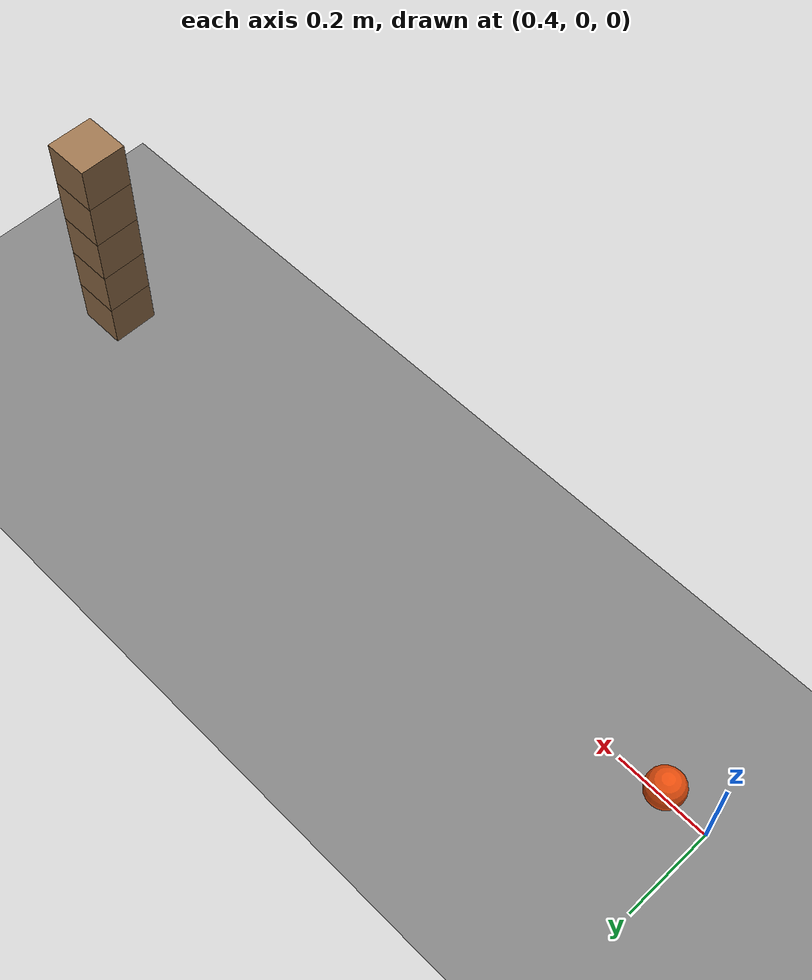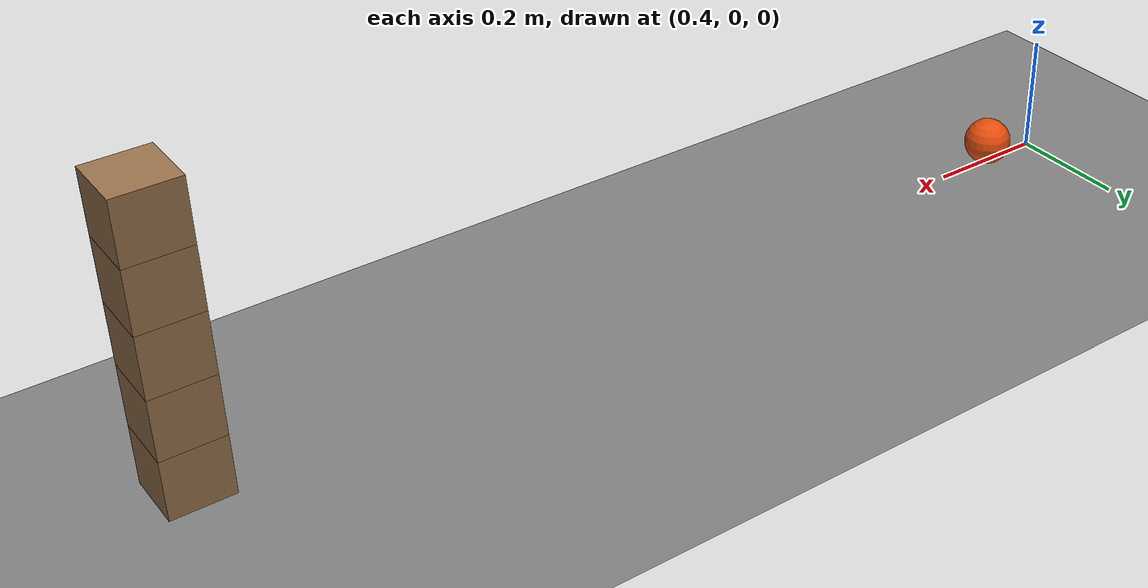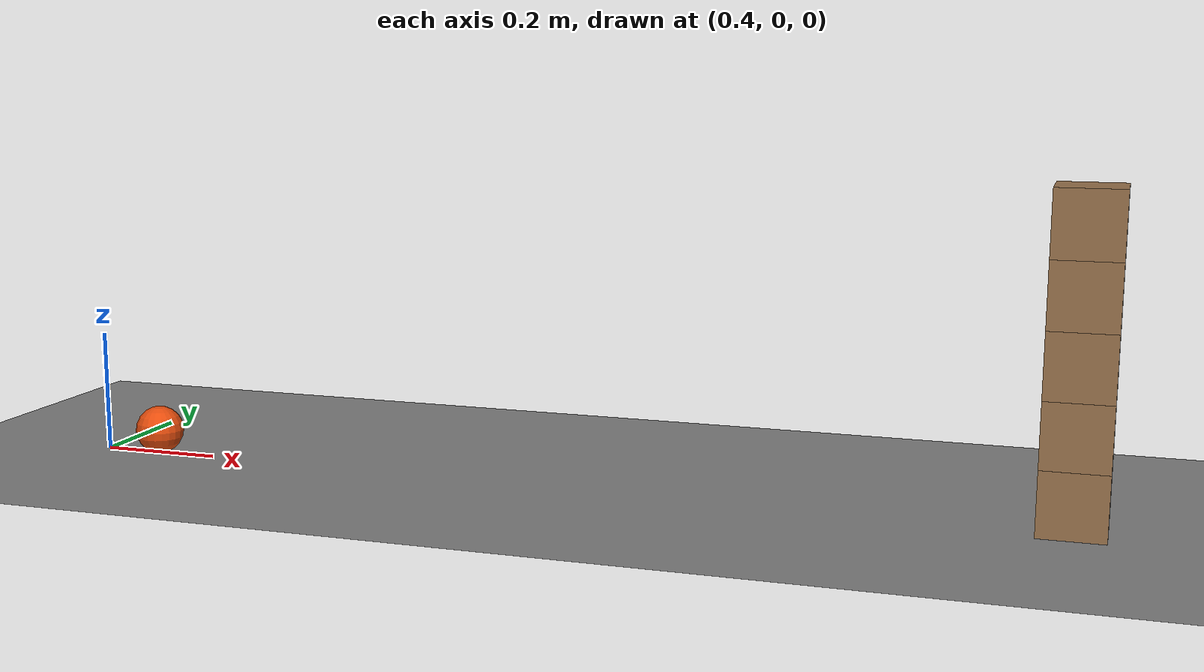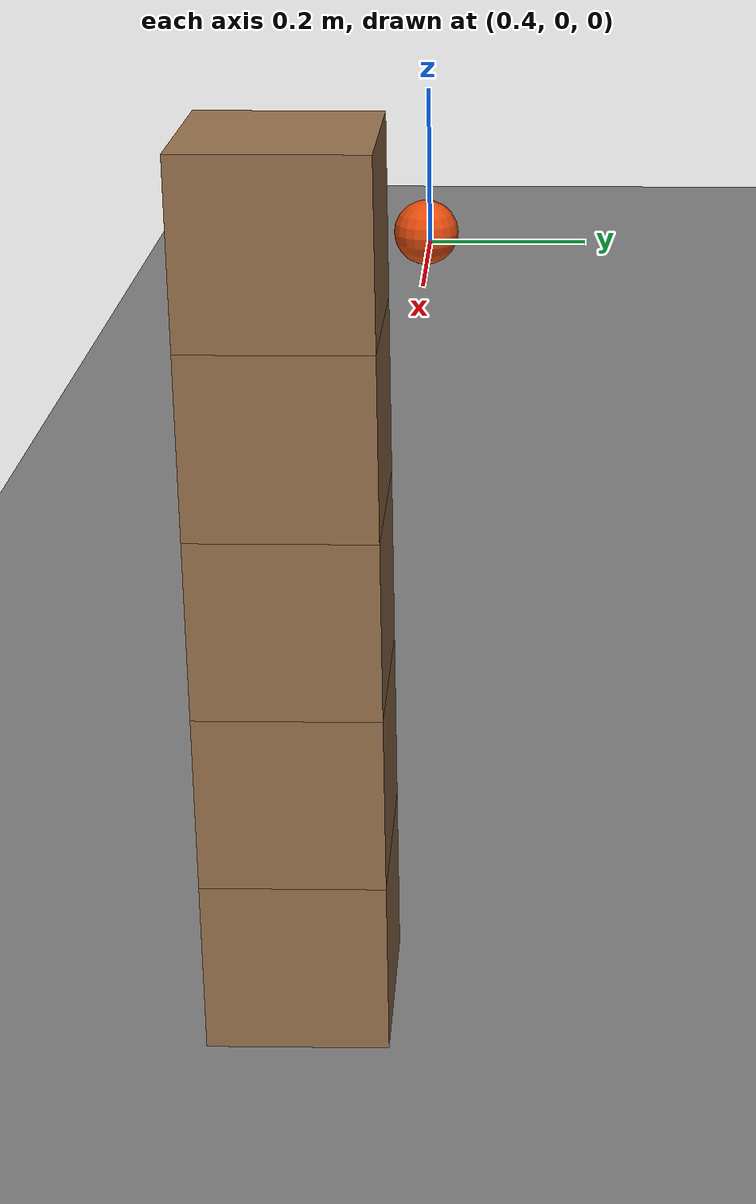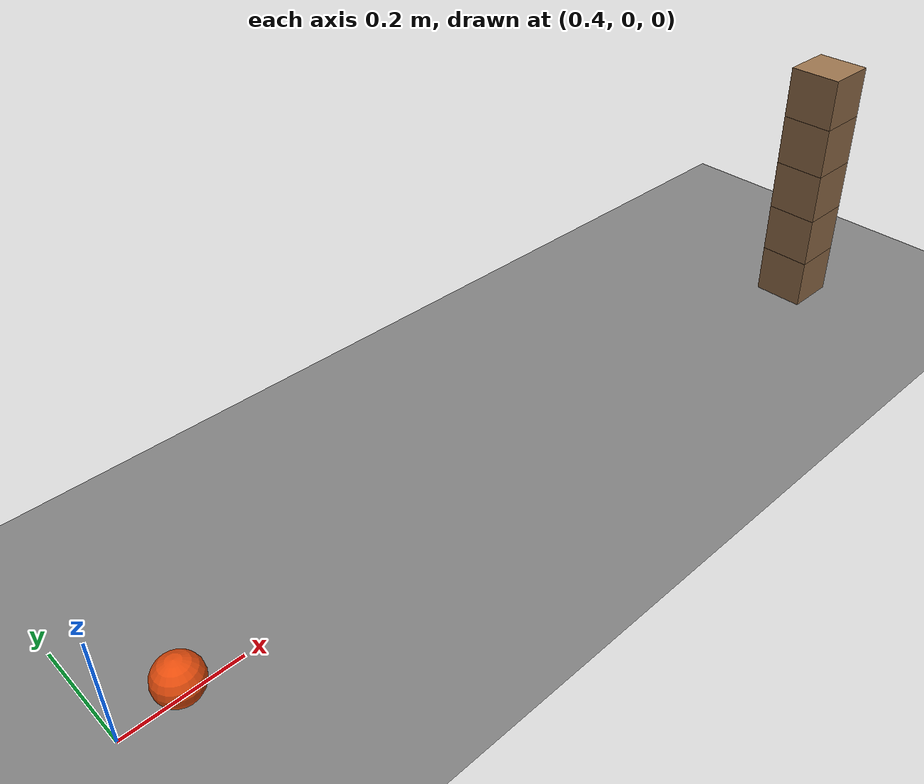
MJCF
<mujoco model="stack_of_five_knocked_from_below">
  <compiler angle="radian"/>
  <option timestep="0.002"/>
  <worldbody>
    <geom name="floor" type="plane" size="6 6 0.1" friction="0.8 0.005 0.001"/>
    <body name="block1" pos="2 0 0.05">
      <freejoint/>
      <geom name="block1" type="box" pos="0 0 0" size="0.05 0.05 0.05" mass="0.2" friction="0.9 0.005 0.001" rgba="0.6 0.45 0.3 1"/>
    </body>
    <body name="block2" pos="2 0 0.15">
      <freejoint/>
      <geom name="block2" type="box" pos="0 0 0" size="0.05 0.05 0.05" mass="0.2" friction="0.9 0.005 0.001" rgba="0.6 0.45 0.3 1"/>
    </body>
    <body name="block3" pos="2 0 0.25">
      <freejoint/>
      <geom name="block3" type="box" pos="0 0 0" size="0.05 0.05 0.05" mass="0.2" friction="0.9 0.005 0.001" rgba="0.6 0.45 0.3 1"/>
    </body>
    <body name="block4" pos="2 0 0.35">
      <freejoint/>
      <geom name="block4" type="box" pos="0 0 0" size="0.05 0.05 0.05" mass="0.2" friction="0.9 0.005 0.001" rgba="0.6 0.45 0.3 1"/>
    </body>
    <body name="block5" pos="2 0 0.45">
      <freejoint/>
      <geom name="block5" type="box" pos="0 0 0" size="0.05 0.05 0.05" mass="0.2" friction="0.9 0.005 0.001" rgba="0.6 0.45 0.3 1"/>
    </body>
    <body name="ball" pos="0.5 0 0.04">
      <freejoint/>
      <geom name="ball" type="sphere" pos="0 0 0" size="0.04" mass="1" condim="6" friction="0.8 0.005 0.001" solref="0.01 1" rgba="0.9 0.3 0.05 1"/>
    </body>
  </worldbody>
  <keyframe>
    <key name="start" qpos="2 0 0.05 1 0 0 0 2 0 0.15 1 0 0 0 2 0 0.25 1 0 0 0 2 0 0.35 1 0 0 0 2 0 0.45 1 0 0 0 0.5 0 0.04 1 0 0 0" qvel="0 0 0 0 0 0 0 0 0 0 0 0 0 0 0 0 0 0 0 0 0 0 0 0 0 0 0 0 0 0 4 0 0 0 100 0"/>
  </keyframe>
</mujoco>
